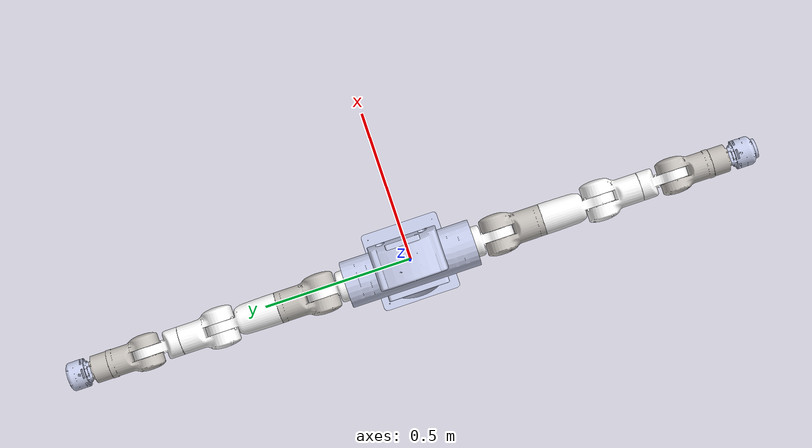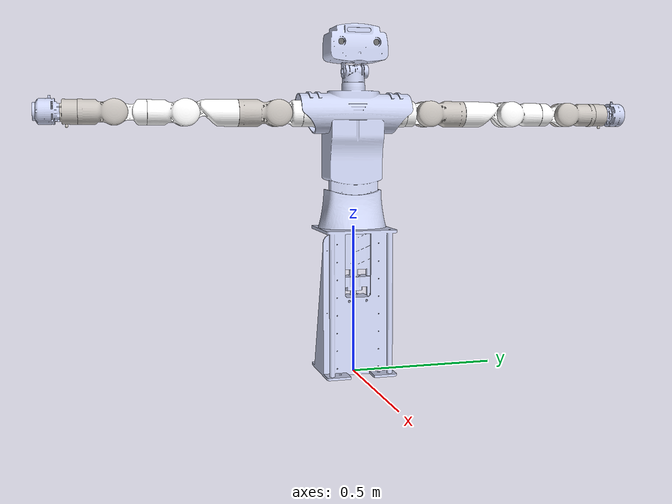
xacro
<?xml version="1.0" encoding="UTF-8"?>
<robot name="dual_arm_robot" xmlns:xacro="http://wiki.ros.org/xacro" >

  <xacro:arg name="sim_gazebo_classic" default="false" />
  <xacro:arg name="device_mode" default="8" />
  <xacro:arg name="sim_flag" default="false" />
  <xacro:arg name="system_arg" default="--path /home/robot/Work/system/robot_config --iscopy true" />
  <xacro:arg name="if_add_axisgroups" default="false" />
  <xacro:arg name="if_add_external_device" default="false" />
  <xacro:arg name="external_device_dof" default="7" />

  <xacro:include filename="$(find multi_arm_description)/urdf/t1.urdf.xacro"/>
  <xacro:include filename="$(find multi_arm_description)/urdf/gazebo_config.xacro"/>
  <xacro:include filename="$(find multi_arm_description)/urdf/external_devices_config.xacro"/>
  <xacro:external_device_config if_add_external_device="$(arg if_add_external_device)"/>
  <xacro:gazebo_config sim_gazebo_classic="$(arg sim_gazebo_classic)"/>

  <xacro:include filename="$(find multi_arm_description)/urdf/t1_robot_ros2_control.xacro"/>
  <xacro:t1_robot_ros2_control_config
    sim_gazebo_classic="$(arg sim_gazebo_classic)"
    device_mode="$(arg device_mode)"
    sim_flag="$(arg sim_flag)"
    system_arg="$(arg system_arg)"
    if_add_axisgroups="$(arg if_add_axisgroups)"
    if_add_external_device="$(arg if_add_external_device)"
    external_device_dof="$(arg external_device_dof)"
  />

</robot>

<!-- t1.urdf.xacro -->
<robot name="t1" xmlns:xacro="http://ros.org/wiki/xacro">
  <xacro:property name = "pkg_address" value = "file://$(find multi_arm_description)"/>
  <link name="fake_link">
    <visual>
        <origin xyz="0 0 0" rpy="0 0 0" />
        <geometry>
            <box size="0.001 0.001 0.001" />
        </geometry>
    </visual>
  </link>
  <joint name="fake_joint" type="fixed">
    <origin xyz="0 0 0.001" rpy="0 0 0" />
    <parent link="fake_link"/>
    <child link="base_link" />
  </joint>
  <link
    name="base_link">
    <inertial>
      <origin
        xyz="0.00608770814142283 0.00345294437108543 0.36719318766884"
        rpy="0 0 0" />
      <mass
        value="5.08372108708452" />
      <inertia
        ixx="0.0681483796497588"
        ixy="-6.583736565642E-05"
        ixz="-0.00435126206558179"
        iyy="0.0562781365647336"
        iyz="-0.000288236319946359"
        izz="0.0317831828027757" />
    </inertial>
    <visual>
      <origin
        xyz="0 0 0"
        rpy="0 0 0" />
      <geometry>
        <mesh
          filename="${pkg_address}/meshes/base_link.STL" />
      </geometry>
      <material
        name="">
        <color
          rgba="0.792156862745098 0.819607843137255 0.933333333333333 1" />
      </material>
    </visual>
    <collision>
      <origin
        xyz="0 0 0"
        rpy="0 0 0" />
      <geometry>
        <mesh
          filename="${pkg_address}/meshes/base_link.STL" />
      </geometry>
    </collision>
  </link>
  <link
    name="Link-Body">
    <inertial>
      <origin
        xyz="-0.000158222660641598 -9.98278990236623E-06 -0.249624469139269"
        rpy="0 0 0" />
      <mass
        value="3.41445688652289" />
      <inertia
        ixx="0.0248203808488518"
        ixy="-2.36063985454879E-08"
        ixz="-0.000749290486872422"
        iyy="0.01388988449036"
        iyz="7.57304943520522E-07"
        izz="0.0185938049482952" />
    </inertial>
    <visual>
      <origin
        xyz="0 0 0"
        rpy="0 0 0" />
      <geometry>
        <mesh
          filename="${pkg_address}/meshes/Link-Body.STL" />
      </geometry>
      <material
        name="">
        <color
          rgba="0.792156862745098 0.819607843137255 0.933333333333333 1" />
      </material>
    </visual>
    <collision>
      <origin
        xyz="0 0 0"
        rpy="0 0 0" />
      <geometry>
        <mesh
          filename="${pkg_address}/meshes/Link-Body.STL" />
      </geometry>
    </collision>
  </link>
  <joint
    name="B0"
    type="prismatic">
    <origin
      xyz="0 0 0.95385"
      rpy="0 0 0" />
    <parent
      link="base_link" />
    <child
      link="Link-Body" />
    <axis
      xyz="0 0 1" />
    <limit
      lower="0.00"
      upper="0.21"
      effort="0"
      velocity="0" />
  </joint>
  <link
    name="link-R0">
    <inertial>
      <origin
        xyz="-1.6666483421104E-05 -0.000428575028514344 0.0387665520212092"
        rpy="0 0 0" />
      <mass
        value="4.48243687136842" />
      <inertia
        ixx="0.00516757527508353"
        ixy="-6.99003877944147E-07"
        ixz="-1.89822417332752E-06"
        iyy="0.00522193992152092"
        iyz="-4.82183712983688E-05"
        izz="0.00566118382384461" />
    </inertial>
    <visual>
      <origin
        xyz="0 0 0"
        rpy="0 0 0" />
      <geometry>
        <mesh
          filename="${pkg_address}/meshes/link-R0.STL" />
      </geometry>
      <material
        name="">
        <color
          rgba="1 1 1 1" />
      </material>
    </visual>
    <collision>
      <origin
        xyz="0 0 0"
        rpy="0 0 0" />
      <geometry>
        <mesh
          filename="${pkg_address}/meshes/link-R0.STL" />
      </geometry>
    </collision>
  </link>
  <joint
    name="R-J0"
    type="fixed">
    <origin
      xyz="0 -0.09 -0.075"
      rpy="1.5708 0 0" />
    <parent
      link="Link-Body" />
    <child
      link="link-R0" />
    <axis
      xyz="0 0 0" />
  </joint>
  <link
    name="link-R1">
    <inertial>
      <origin
        xyz="-3.21247843160233E-06 0.00052447279922216 -0.0441242557856534"
        rpy="0 0 0" />
      <mass
        value="3.29940267206034" />
      <inertia
        ixx="0.00538935884644845"
        ixy="-3.40948002179596E-09"
        ixz="-4.54525514109768E-07"
        iyy="0.00597533433884467"
        iyz="-7.64162243136917E-05"
        izz="0.00258712975386507" />
    </inertial>
    <visual>
      <origin
        xyz="0 0 0"
        rpy="0 0 0" />
      <geometry>
        <mesh
          filename="${pkg_address}/meshes/link-R1.STL" />
      </geometry>
      <material
        name="">
        <color
          rgba="1 1 1 1" />
      </material>
    </visual>
    <collision>
      <origin
        xyz="0 0 0"
        rpy="0 0 0" />
      <geometry>
        <mesh
          filename="${pkg_address}/meshes/link-R1.STL" />
      </geometry>
    </collision>
  </link>
  <joint
    name="R-J1"
    type="revolute">
    <origin
      xyz="0 0 0.172"
      rpy="0 0 -1.5708" />
    <parent
      link="link-R0" />
    <child
      link="link-R1" />
    <axis
      xyz="0 0 1" />
    <limit
      lower="-3.0543"
      upper="3.0543"
      effort="0"
      velocity="0" />
  </joint>
  <link
    name="link-R2">
    <inertial>
      <origin
        xyz="-1.21016987286726E-06 -0.0553985267336023 -0.00166564475227283"
        rpy="0 0 0" />
      <mass
        value="5.63523258516487" />
      <inertia
        ixx="0.0152384536230366"
        ixy="-1.14870185368696E-06"
        ixz="-2.6851571084856E-08"
        iyy="0.00674678421570552"
        iyz="0.000400962979098618"
        izz="0.0142810956251759" />
    </inertial>
    <visual>
      <origin
        xyz="0 0 0"
        rpy="0 0 0" />
      <geometry>
        <mesh
          filename="${pkg_address}/meshes/link-R2.STL" />
      </geometry>
      <material
        name="">
        <color
          rgba="0.776470588235294 0.756862745098039 0.737254901960784 1" />
      </material>
    </visual>
    <collision>
      <origin
        xyz="0 0 0"
        rpy="0 0 0" />
      <geometry>
        <mesh
          filename="${pkg_address}/meshes/link-R2.STL" />
      </geometry>
    </collision>
  </link>
  <joint
    name="R-J2"
    type="revolute">
    <origin
      xyz="0 0 0"
      rpy="-1.5708 0 0" />
    <parent
      link="link-R1" />
    <child
      link="link-R2" />
    <axis
      xyz="0 0 1" />
    <limit
      lower="-1.8246"
      upper="1.8246"
      effort="0"
      velocity="0" />
  </joint>
  <link
    name="link-R3">
    <inertial>
      <origin
        xyz="-0.00236928911888323 0.000256017152003125 -0.0989215512578252"
        rpy="0 0 0" />
      <mass
        value="6.76099941307626" />
      <inertia
        ixx="0.0241007935216868"
        ixy="-4.07055219750389E-06"
        ixz="0.00052429441504994"
        iyy="0.0245027073583885"
        iyz="-0.000170307131198768"
        izz="0.0057717631268867" />
    </inertial>
    <visual>
      <origin
        xyz="0 0 0"
        rpy="0 0 0" />
      <geometry>
        <mesh
          filename="${pkg_address}/meshes/link-R3.STL" />
      </geometry>
      <material
        name="">
        <color
          rgba="1 1 1 1" />
      </material>
    </visual>
    <collision>
      <origin
        xyz="0 0 0"
        rpy="0 0 0" />
      <geometry>
        <mesh
          filename="${pkg_address}/meshes/link-R3.STL" />
      </geometry>
    </collision>
  </link>
  <joint
    name="R-J3"
    type="revolute">
    <origin
      xyz="0 -0.3 0"
      rpy="1.5708 0 0" />
    <parent
      link="link-R2" />
    <child
      link="link-R3" />
    <axis
      xyz="0 0 1" />
    <limit
      lower="-3.0543"
      upper="3.0543"
      effort="0"
      velocity="0" />
  </joint>
  <link
    name="link-R4">
    <inertial>
      <origin
        xyz="1.55020330738775E-06 -0.0327095870323233 -0.000281996819201039"
        rpy="0 0 0" />
      <mass
        value="6.86474413283516" />
      <inertia
        ixx="0.0198391962830934"
        ixy="-2.77202330132127E-07"
        ixz="-1.52336964149364E-08"
        iyy="0.00950734139914809"
        iyz="5.51814068233546E-05"
        izz="0.0163570915356325" />
    </inertial>
    <visual>
      <origin
        xyz="0 0 0"
        rpy="0 0 0" />
      <geometry>
        <mesh
          filename="${pkg_address}/meshes/link-R4.STL" />
      </geometry>
      <material
        name="">
        <color
          rgba="1 1 1 1" />
      </material>
    </visual>
    <collision>
      <origin
        xyz="0 0 0"
        rpy="0 0 0" />
      <geometry>
        <mesh
          filename="${pkg_address}/meshes/link-R4.STL" />
      </geometry>
    </collision>
  </link>
  <joint
    name="R-J4"
    type="revolute">
    <origin
      xyz="0 0 0"
      rpy="-1.5708 0 0" />
    <parent
      link="link-R3" />
    <child
      link="link-R4" />
    <axis
      xyz="0 0 1" />
    <limit
      lower="-2.3538"
      upper="1.7123"
      effort="0"
      velocity="0" />
  </joint>
  <link
    name="link-R5">
    <inertial>
      <origin
        xyz="2.61938777335047E-06 0.000664248517209837 -0.0552339020133823"
        rpy="0 0 0" />
      <mass
        value="3.13715935450461" />
      <inertia
        ixx="0.00617168729257163"
        ixy="9.57723919184407E-08"
        ixz="-4.53982816082471E-07"
        iyy="0.00650310856970505"
        iyz="-0.000114073990108045"
        izz="0.00207599235031165" />
    </inertial>
    <visual>
      <origin
        xyz="0 0 0"
        rpy="0 0 0" />
      <geometry>
        <mesh
          filename="${pkg_address}/meshes/link-R5.STL" />
      </geometry>
      <material
        name="">
        <color
          rgba="1 1 1 1" />
      </material>
    </visual>
    <collision>
      <origin
        xyz="0 0 0"
        rpy="0 0 0" />
      <geometry>
        <mesh
          filename="${pkg_address}/meshes/link-R5.STL" />
      </geometry>
    </collision>
  </link>
  <joint
    name="R-J5"
    type="revolute">
    <origin
      xyz="0 -0.22 0"
      rpy="1.5708 0 0" />
    <parent
      link="link-R4" />
    <child
      link="link-R5" />
    <axis
      xyz="0 0 1" />
    <limit
      lower="-3.0543"
      upper="3.0543"
      effort="0"
      velocity="0" />
  </joint>
  <link
    name="link-R6">
    <inertial>
      <origin
        xyz="1.46922276367256E-06 -0.0320401134442209 -0.000354045768412676"
        rpy="0 0 0" />
      <mass
        value="5.41190432381934" />
      <inertia
        ixx="0.0130568238032191"
        ixy="-2.44895572730431E-07"
        ixz="1.52953724925497E-07"
        iyy="0.00624175373758098"
        iyz="5.44179711474993E-05"
        izz="0.0110970473747011" />
    </inertial>
    <visual>
      <origin
        xyz="0 0 0"
        rpy="0 0 0" />
      <geometry>
        <mesh
          filename="${pkg_address}/meshes/link-R6.STL" />
      </geometry>
      <material
        name="">
        <color
          rgba="0.776470588235294 0.756862745098039 0.737254901960784 1" />
      </material>
    </visual>
    <collision>
      <origin
        xyz="0 0 0"
        rpy="0 0 0" />
      <geometry>
        <mesh
          filename="${pkg_address}/meshes/link-R6.STL" />
      </geometry>
    </collision>
  </link>
  <joint
    name="R-J6"
    type="revolute">
    <origin
      xyz="0 0 0"
      rpy="-1.5708 0 0" />
    <parent
      link="link-R5" />
    <child
      link="link-R6" />
    <axis
      xyz="0 0 1" />
    <limit
      lower="-2.0944"
      upper="2.0944"
      effort="0"
      velocity="0" />
  </joint>
  <link
    name="link-R7">
    <inertial>
      <origin
        xyz="0.000201227208657229 -4.45951571791945E-06 -0.0324015634635619"
        rpy="0 0 0" />
      <mass
        value="2.17471093562456" />
      <inertia
        ixx="0.00140827770383968"
        ixy="-4.53525874180243E-09"
        ixz="-1.01773030744789E-05"
        iyy="0.00142257226784241"
        iyz="-2.4533932555503E-07"
        izz="0.00166147868684454" />
    </inertial>
    <visual>
      <origin
        xyz="0 0 0"
        rpy="0 0 0" />
      <geometry>
        <mesh
          filename="${pkg_address}/meshes/link-R7.STL" />
      </geometry>
      <material
        name="">
        <color
          rgba="0.776470588235294 0.756862745098039 0.737254901960784 1" />
      </material>
    </visual>
    <collision>
      <origin
        xyz="0 0 0"
        rpy="0 0 0" />
      <geometry>
        <mesh
          filename="${pkg_address}/meshes/link-R7.STL" />
      </geometry>
    </collision>
  </link>
  <joint
    name="R-J7"
    type="revolute">
    <origin
      xyz="0 -0.164 0"
      rpy="1.5708 0 0" />
    <parent
      link="link-R6" />
    <child
      link="link-R7" />
    <axis
      xyz="0 0 1" />
    <limit
      lower="-3.0543"
      upper="3.0543"
      effort="0"
      velocity="0" />
  </joint>
  <link
    name="link-Rtool">
    <inertial>
      <origin
        xyz="0.000108228106315056 -1.58700641768567E-05 -0.033217114965277"
        rpy="0 0 0" />
      <mass
        value="0.2339522890314" />
      <inertia
        ixx="0.000108307997361677"
        ixy="5.76555958161368E-08"
        ixz="-9.61151743846956E-08"
        iyy="0.000110720195394877"
        iyz="-8.59971960181788E-09"
        izz="0.000197661960567637" />
    </inertial>
    <visual>
      <origin
        xyz="0 0 0"
        rpy="0 0 0" />
      <geometry>
        <mesh
          filename="${pkg_address}/meshes/link-Rtool.STL" />
      </geometry>
      <material
        name="">
        <color
          rgba="0.792156862745098 0.819607843137255 0.933333333333333 1" />
      </material>
    </visual>
    <collision>
      <origin
        xyz="0 0 0"
        rpy="0 0 0" />
      <geometry>
        <mesh
          filename="${pkg_address}/meshes/link-Rtool.STL" />
      </geometry>
    </collision>
  </link>
  <joint
    name="R-tool"
    type="fixed">
    <origin
      xyz="0 0 0.072399"
      rpy="0 0 0" />
    <parent
      link="link-R7" />
    <child
      link="link-Rtool" />
    <axis
      xyz="0 0 0" />
  </joint>
  <link
    name="link-L0">
    <inertial>
      <origin
        xyz="1.6666483512664E-05 0.000428575028515121 0.0387665520212093"
        rpy="0 0 0" />
      <mass
        value="4.48243687136841" />
      <inertia
        ixx="0.00516757527508331"
        ixy="-6.99003877942928E-07"
        ixz="1.89822417332268E-06"
        iyy="0.00522193992152107"
        iyz="4.8218371298447E-05"
        izz="0.00566118382384421" />
    </inertial>
    <visual>
      <origin
        xyz="0 0 0"
        rpy="0 0 0" />
      <geometry>
        <mesh
          filename="${pkg_address}/meshes/link-L0.STL" />
      </geometry>
      <material
        name="">
        <color
          rgba="1 1 1 1" />
      </material>
    </visual>
    <collision>
      <origin
        xyz="0 0 0"
        rpy="0 0 0" />
      <geometry>
        <mesh
          filename="${pkg_address}/meshes/link-L0.STL" />
      </geometry>
    </collision>
  </link>
  <joint
    name="L-J0"
    type="fixed">
    <origin
      xyz="0 0.09 -0.075"
      rpy="-1.5708 0 0" />
    <parent
      link="Link-Body" />
    <child
      link="link-L0" />
    <axis
      xyz="0 0 0" />
  </joint>
  <link
    name="link-L1">
    <inertial>
      <origin
        xyz="3.21247853196649E-06 -0.000524470579303317 -0.0441242557403994"
        rpy="0 0 0" />
      <mass
        value="3.29940267206884" />
      <inertia
        ixx="0.00538963812553377"
        ixy="-3.4095024805657E-09"
        ixz="4.5452558593587E-07"
        iyy="0.00597561361790467"
        iyz="7.6416224176846E-05"
        izz="0.00258712975381606" />
    </inertial>
    <visual>
      <origin
        xyz="0 0 0"
        rpy="0 0 0" />
      <geometry>
        <mesh
          filename="${pkg_address}/meshes/link-L1.STL" />
      </geometry>
      <material
        name="">
        <color
          rgba="1 1 1 1" />
      </material>
    </visual>
    <collision>
      <origin
        xyz="0 0 0"
        rpy="0 0 0" />
      <geometry>
        <mesh
          filename="${pkg_address}/meshes/link-L1.STL" />
      </geometry>
    </collision>
  </link>
  <joint
    name="L-J1"
    type="revolute">
    <origin
      xyz="0 0 0.172"
      rpy="0 0 1.5708" />
    <parent
      link="link-L0" />
    <child
      link="link-L1" />
    <axis
      xyz="0 0 1" />
    <limit
      lower="-3.0543"
      upper="3.0543"
      effort="0"
      velocity="0" />
  </joint>
  <link
    name="link-L2">
    <inertial>
      <origin
        xyz="1.21053463830734E-06 -0.0553985275990222 0.00166564644389522"
        rpy="0 0 0" />
      <mass
        value="5.63523249981779" />
      <inertia
        ixx="0.0152384532072431"
        ixy="1.14857930990107E-06"
        ixz="-2.69260236187485E-08"
        iyy="0.00674678405526804"
        iyz="-0.000400962800547985"
        izz="0.0142810952659943" />
    </inertial>
    <visual>
      <origin
        xyz="0 0 0"
        rpy="0 0 0" />
      <geometry>
        <mesh
          filename="${pkg_address}/meshes/link-L2.STL" />
      </geometry>
      <material
        name="">
        <color
          rgba="0.776470588235294 0.756862745098039 0.737254901960784 1" />
      </material>
    </visual>
    <collision>
      <origin
        xyz="0 0 0"
        rpy="0 0 0" />
      <geometry>
        <mesh
          filename="${pkg_address}/meshes/link-L2.STL" />
      </geometry>
    </collision>
  </link>
  <joint
    name="L-J2"
    type="revolute">
    <origin
      xyz="0 0 0"
      rpy="-1.5708 0 0" />
    <parent
      link="link-L1" />
    <child
      link="link-L2" />
    <axis
      xyz="0 0 1" />
    <limit
      lower="-1.8246"
      upper="1.8246"
      effort="0"
      velocity="0" />
  </joint>
  <link
    name="link-L3">
    <inertial>
      <origin
        xyz="-0.00237096053014541 -0.000255872829113588 -0.0989215541692502"
        rpy="0 0 0" />
      <mass
        value="6.76099916761065" />
      <inertia
        ixx="0.024100801563671"
        ixy="4.13004276507571E-06"
        ixz="0.000525412389026435"
        iyy="0.0245026519037375"
        iyz="0.000172055474478548"
        izz="0.00577171893802094" />
    </inertial>
    <visual>
      <origin
        xyz="0 0 0"
        rpy="0 0 0" />
      <geometry>
        <mesh
          filename="${pkg_address}/meshes/link-L3.STL" />
      </geometry>
      <material
        name="">
        <color
          rgba="1 1 1 1" />
      </material>
    </visual>
    <collision>
      <origin
        xyz="0 0 0"
        rpy="0 0 0" />
      <geometry>
        <mesh
          filename="${pkg_address}/meshes/link-L3.STL" />
      </geometry>
    </collision>
  </link>
  <joint
    name="L-J3"
    type="revolute">
    <origin
      xyz="0 -0.3 0"
      rpy="1.5708 0 0" />
    <parent
      link="link-L2" />
    <child
      link="link-L3" />
    <axis
      xyz="0 0 1" />
    <limit
      lower="-3.0543"
      upper="3.0543"
      effort="0"
      velocity="0" />
  </joint>
  <link
    name="link-L4">
    <inertial>
      <origin
        xyz="-1.55086507591662E-06 -0.03270958685873 0.000281998045914173"
        rpy="0 0 0" />
      <mass
        value="6.86474389336079" />
      <inertia
        ixx="0.0198391959633156"
        ixy="2.7718149887142E-07"
        ixz="-1.54048707117146E-08"
        iyy="0.00950734101323493"
        iyz="-5.51813656186912E-05"
        izz="0.0163570914575466" />
    </inertial>
    <visual>
      <origin
        xyz="0 0 0"
        rpy="0 0 0" />
      <geometry>
        <mesh
          filename="${pkg_address}/meshes/link-L4.STL" />
      </geometry>
      <material
        name="">
        <color
          rgba="1 1 1 1" />
      </material>
    </visual>
    <collision>
      <origin
        xyz="0 0 0"
        rpy="0 0 0" />
      <geometry>
        <mesh
          filename="${pkg_address}/meshes/link-L4.STL" />
      </geometry>
    </collision>
  </link>
  <joint
    name="L-J4"
    type="revolute">
    <origin
      xyz="0 0 0"
      rpy="-1.5708 0 0" />
    <parent
      link="link-L3" />
    <child
      link="link-L4" />
    <axis
      xyz="0 0 1" />
    <limit
      lower="-2.3538"
      upper="1.7123"
      effort="0"
      velocity="0" />
  </joint>
  <link
    name="link-L5">
    <inertial>
      <origin
        xyz="-2.61938705747866E-06 -0.000664248517338731 -0.055233902013257"
        rpy="0 0 0" />
      <mass
        value="3.13715935446969" />
      <inertia
        ixx="0.00617168729256577"
        ixy="9.57723801003195E-08"
        ixz="4.53982841712059E-07"
        iyy="0.00650310856968162"
        iyz="0.000114073990132104"
        izz="0.0020759923502868" />
    </inertial>
    <visual>
      <origin
        xyz="0 0 0"
        rpy="0 0 0" />
      <geometry>
        <mesh
          filename="${pkg_address}/meshes/link-L5.STL" />
      </geometry>
      <material
        name="">
        <color
          rgba="1 1 1 1" />
      </material>
    </visual>
    <collision>
      <origin
        xyz="0 0 0"
        rpy="0 0 0" />
      <geometry>
        <mesh
          filename="${pkg_address}/meshes/link-L5.STL" />
      </geometry>
    </collision>
  </link>
  <joint
    name="L-J5"
    type="revolute">
    <origin
      xyz="0 -0.22 0"
      rpy="1.5708 0 0" />
    <parent
      link="link-L4" />
    <child
      link="link-L5" />
    <axis
      xyz="0 0 1" />
    <limit
      lower="-3.0543"
      upper="3.0543"
      effort="0"
      velocity="0" />
  </joint>
  <link
    name="link-L6">
    <inertial>
      <origin
        xyz="-1.46922276367256E-06 -0.0320401134442212 0.000354045767970296"
        rpy="0 0 0" />
      <mass
        value="5.41190432381933" />
      <inertia
        ixx="0.0130568238032191"
        ixy="2.4489557274105E-07"
        ixz="1.5295372493794E-07"
        iyy="0.00624175373758096"
        iyz="-5.44179711474942E-05"
        izz="0.0110970473747011" />
    </inertial>
    <visual>
      <origin
        xyz="0 0 0"
        rpy="0 0 0" />
      <geometry>
        <mesh
          filename="${pkg_address}/meshes/link-L6.STL" />
      </geometry>
      <material
        name="">
        <color
          rgba="0.776470588235294 0.756862745098039 0.737254901960784 1" />
      </material>
    </visual>
    <collision>
      <origin
        xyz="0 0 0"
        rpy="0 0 0" />
      <geometry>
        <mesh
          filename="${pkg_address}/meshes/link-L6.STL" />
      </geometry>
    </collision>
  </link>
  <joint
    name="L-J6"
    type="revolute">
    <origin
      xyz="0 0 0"
      rpy="-1.5708 0 0" />
    <parent
      link="link-L5" />
    <child
      link="link-L6" />
    <axis
      xyz="0 0 1" />
    <limit
      lower="-2.0944"
      upper="2.0944"
      effort="0"
      velocity="0" />
  </joint>
  <link
    name="link-L7">
    <inertial>
      <origin
        xyz="0.000201227208658783 -4.45951226892605E-06 -0.0324015634635619"
        rpy="0 0 0" />
      <mass
        value="2.17471093562457" />
      <inertia
        ixx="0.00140827770383969"
        ixy="-4.53525875977876E-09"
        ixz="-1.01773030744803E-05"
        iyy="0.00142257226784241"
        iyz="-2.4533932510959E-07"
        izz="0.00166147868684455" />
    </inertial>
    <visual>
      <origin
        xyz="0 0 0"
        rpy="0 0 0" />
      <geometry>
        <mesh
          filename="${pkg_address}/meshes/link-L7.STL" />
      </geometry>
      <material
        name="">
        <color
          rgba="0.776470588235294 0.756862745098039 0.737254901960784 1" />
      </material>
    </visual>
    <collision>
      <origin
        xyz="0 0 0"
        rpy="0 0 0" />
      <geometry>
        <mesh
          filename="${pkg_address}/meshes/link-L7.STL" />
      </geometry>
    </collision>
  </link>
  <joint
    name="L-J7"
    type="revolute">
    <origin
      xyz="0 -0.164 0"
      rpy="1.5708 0 0" />
    <parent
      link="link-L6" />
    <child
      link="link-L7" />
    <axis
      xyz="0 0 1" />
    <limit
      lower="-3.0543"
      upper="3.0543"
      effort="0"
      velocity="0" />
  </joint>
  <link
    name="link-Ltool">
    <inertial>
      <origin
        xyz="0.000109753641508337 -1.6093767850178E-05 -0.0269481337256603"
        rpy="0 0 0" />
      <mass
        value="0.230700440407675" />
      <inertia
        ixx="0.000104208489619373"
        ixy="5.76643215390902E-08"
        ixz="-6.47742951675152E-08"
        iyy="0.000106620567904689"
        iyz="-3.13502539431154E-09"
        izz="0.000192988356501623" />
    </inertial>
    <visual>
      <origin
        xyz="0 0 0"
        rpy="0 0 0" />
      <geometry>
        <mesh
          filename="${pkg_address}/meshes/link-Ltool.STL" />
      </geometry>
      <material
        name="">
        <color
          rgba="0.792156862745098 0.819607843137255 0.933333333333333 1" />
      </material>
    </visual>
    <collision>
      <origin
        xyz="0 0 0"
        rpy="0 0 0" />
      <geometry>
        <mesh
          filename="${pkg_address}/meshes/link-Ltool.STL" />
      </geometry>
    </collision>
  </link>
  <joint
    name="L-tool"
    type="fixed">
    <origin
      xyz="0 0 0.064399"
      rpy="0 0 0" />
    <parent
      link="link-L7" />
    <child
      link="link-Ltool" />
    <axis
      xyz="0 0 0" />
  </joint>
  <link
    name="link-H1">
    <inertial>
      <origin
        xyz="0.00143601240487204 0.00399729515756818 -0.0130277192812951"
        rpy="0 0 0" />
      <mass
        value="0.0972089924761052" />
      <inertia
        ixx="2.39224248667145E-05"
        ixy="-1.46844515801986E-07"
        ixz="-2.53729271028935E-06"
        iyy="3.68919711015593E-05"
        iyz="-1.36177837798517E-07"
        izz="3.47334776195984E-05" />
    </inertial>
    <visual>
      <origin
        xyz="0 0 0"
        rpy="0 0 0" />
      <geometry>
        <mesh
          filename="${pkg_address}/meshes/link-H1.STL" />
      </geometry>
      <material
        name="">
        <color
          rgba="0.792156862745098 0.819607843137255 0.933333333333333 1" />
      </material>
    </visual>
    <collision>
      <origin
        xyz="0 0 0"
        rpy="0 0 0" />
      <geometry>
        <mesh
          filename="${pkg_address}/meshes/link-H1.STL" />
      </geometry>
    </collision>
  </link>
  <joint
    name="H-J1"
    type="revolute">
    <origin
      xyz="0 0 0.06655"
      rpy="0 0 0" />
    <parent
      link="Link-Body" />
    <child
      link="link-H1" />
    <axis
      xyz="0 0 1" />
    <limit
      lower="-3.14"
      upper="3.14"
      effort="0"
      velocity="0" />
  </joint>
  <link
    name="link-H2">
    <inertial>
      <origin
        xyz="0.0207949033546781 -0.0845619965913866 0.000741712456379605"
        rpy="0 0 0" />
      <mass
        value="0.370390486643493" />
      <inertia
        ixx="0.00194303023381918"
        ixy="-0.000181411351354721"
        ixz="1.91808717006784E-06"
        iyy="0.00152247523425536"
        iyz="8.46665148980836E-07"
        izz="0.000842200739248113" />
    </inertial>
    <visual>
      <origin
        xyz="0 0 0"
        rpy="0 0 0" />
      <geometry>
        <mesh
          filename="${pkg_address}/meshes/link-H2.STL" />
      </geometry>
      <material
        name="">
        <color
          rgba="0.792156862745098 0.819607843137255 0.933333333333333 1" />
      </material>
    </visual>
    <collision>
      <origin
        xyz="0 0 0"
        rpy="0 0 0" />
      <geometry>
        <mesh
          filename="${pkg_address}/meshes/link-H2.STL" />
      </geometry>
    </collision>
  </link>
  <joint
    name="H-J2"
    type="revolute">
    <origin
      xyz="0 0 0"
      rpy="-1.5708 0 0" />
    <parent
      link="link-H1" />
    <child
      link="link-H2" />
    <axis
      xyz="0 0 1" />
    <limit
      lower="-1.5708"
      upper="1.5708"
      effort="0"
      velocity="0" />
  </joint>
  <link
    name="link-realsense">
    <inertial>
      <origin
        xyz="0.0322543986624866 6.03314827074541E-05 -0.0125498678920444"
        rpy="0 0 0" />
      <mass
        value="0.0447467360808164" />
      <inertia
        ixx="3.94486330723015E-06"
        ixy="-3.10310055909044E-09"
        ixz="-2.44513034413358E-07"
        iyy="2.73626295208831E-05"
        iyz="1.09640575825865E-09"
        izz="2.72781186721372E-05" />
    </inertial>
    <visual>
      <origin
        xyz="0 0 0"
        rpy="0 0 0" />
      <geometry>
        <mesh
          filename="${pkg_address}/meshes/link-realsense.STL" />
      </geometry>
      <material
        name="">
        <color
          rgba="0.792156862745098 0.819607843137255 0.933333333333333 1" />
      </material>
    </visual>
    <collision>
      <origin
        xyz="0 0 0"
        rpy="0 0 0" />
      <geometry>
        <mesh
          filename="${pkg_address}/meshes/link-realsense.STL" />
      </geometry>
    </collision>
  </link>
  <joint
    name="J-realsense"
    type="fixed">
    <origin
      xyz="0.07 -0.1305 0.032498"
      rpy="0 1.5708 0" />
    <parent
      link="link-H2" />
    <child
      link="link-realsense" />
    <axis
      xyz="0 0 0" />
  </joint>
  <link
    name="link-zed">
    <inertial>
      <origin
        xyz="0.0599972918175352 -6.22579607822971E-06 -0.0161109295588259"
        rpy="0 0 0" />
      <mass
        value="0.152411602303506" />
      <inertia
        ixx="2.28615403166201E-05"
        ixy="6.23540444474161E-09"
        ixz="2.39714520739596E-09"
        iyy="0.000374755631371841"
        iyz="-2.07865484370704E-08"
        izz="0.000372358627433334" />
    </inertial>
    <visual>
      <origin
        xyz="0 0 0"
        rpy="0 0 0" />
      <geometry>
        <mesh
          filename="${pkg_address}/meshes/link-zed.STL" />
      </geometry>
      <material
        name="">
        <color
          rgba="0.411764705882353 0.411764705882353 0.411764705882353 1" />
      </material>
    </visual>
    <collision>
      <origin
        xyz="0 0 0"
        rpy="0 0 0" />
      <geometry>
        <mesh
          filename="${pkg_address}/meshes/link-zed.STL" />
      </geometry>
    </collision>
  </link>
  <joint
    name="J-zed"
    type="fixed">
    <origin
      xyz="0.068259 -0.091783 0.059998"
      rpy="0 1.5708 0" />
    <parent
      link="link-H2" />
    <child
      link="link-zed" />
    <axis
      xyz="0 0 0" />
  </joint>
</robot>
